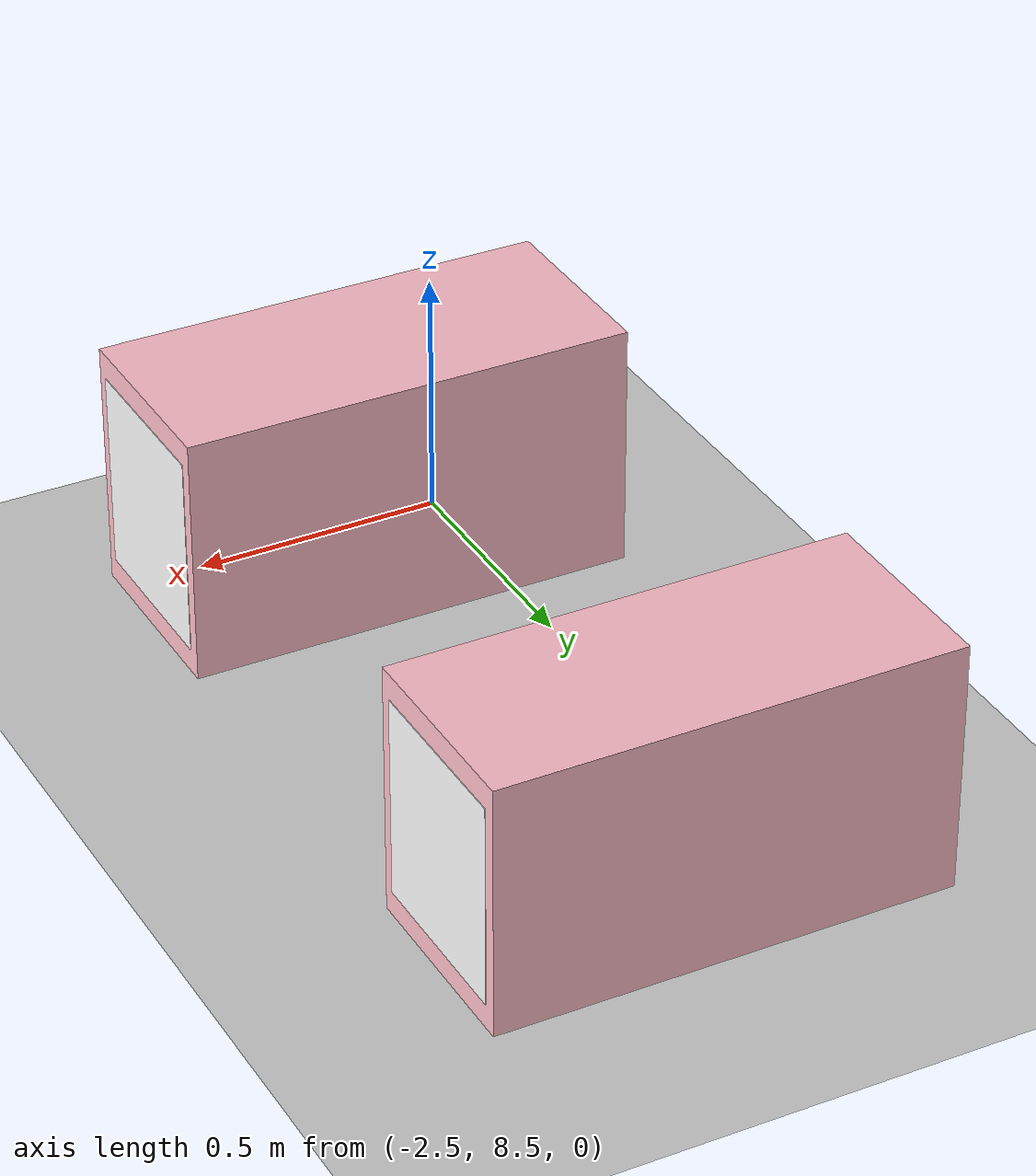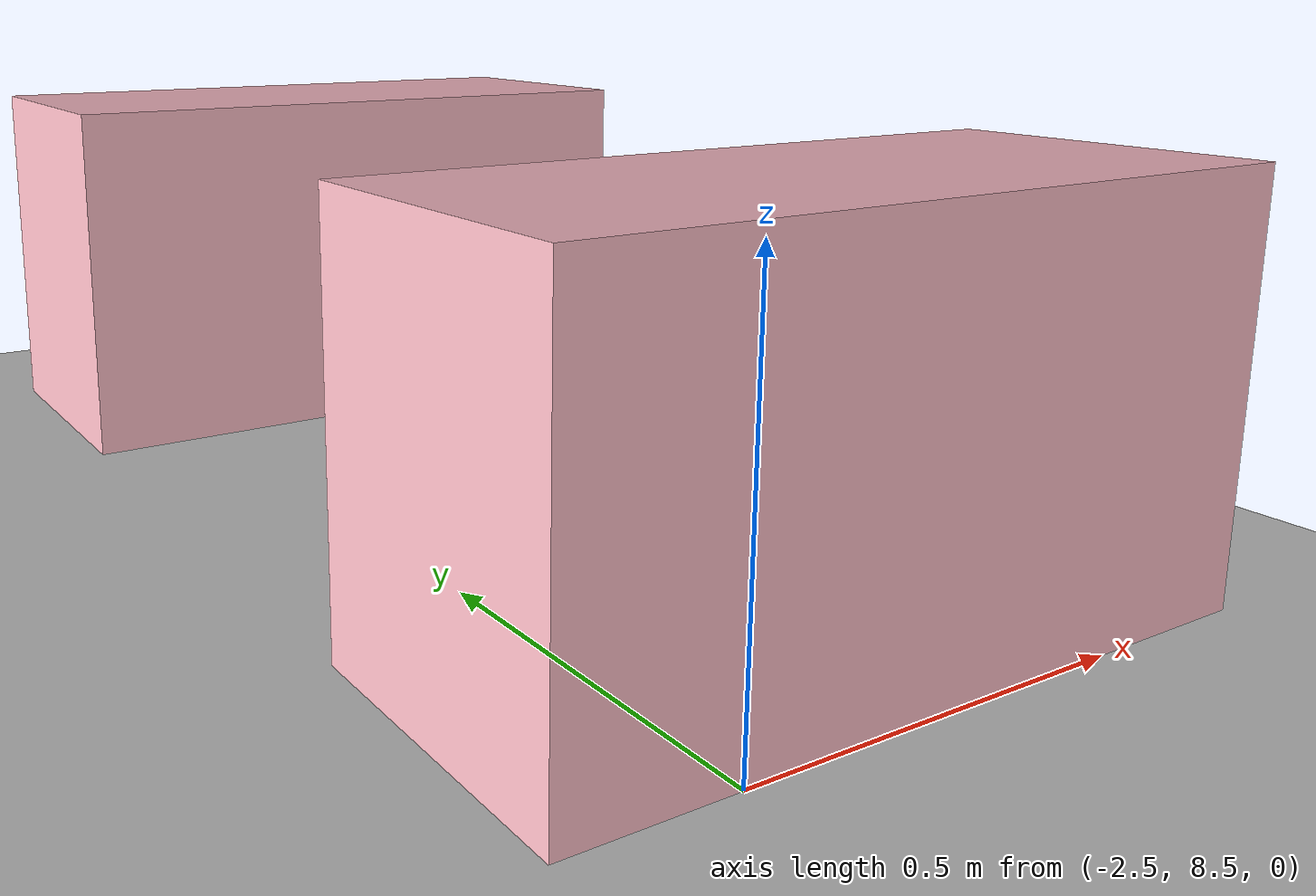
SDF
<sdf version="1.9">
 <world name="pig_pen_16units_world">
  <model name="ground_plane">
   <static>true</static>
   <link name="link">
    <collision name="collision">
     <geometry><plane><normal>0 0 1</normal><size>30 30</size></plane></geometry>
     <surface><friction><ode><mu>1.0</mu><mu2>1.0</mu2></ode></friction></surface>
    </collision>
    <visual name="visual">
     <geometry><plane><normal>0 0 1</normal><size>30 30</size></plane></geometry>
     <material>
      <ambient>0.8 0.8 0.8 1</ambient>
      <diffuse>0.8 0.8 0.8 1</diffuse>
      <specular>0.2 0.2 0.2 1</specular>
     </material>
    </visual>
   </link>
  </model>
  <include><uri>model://farm_pig</uri><name>pig7_b</name><pose>-2.275 9.865 0.27 0 0 0</pose></include>
  <include><uri>model://farm_pig</uri><name>pig8_a</name><pose>-2.275 8.675 0.27 0 0 0</pose></include>
 </world>
</sdf>
